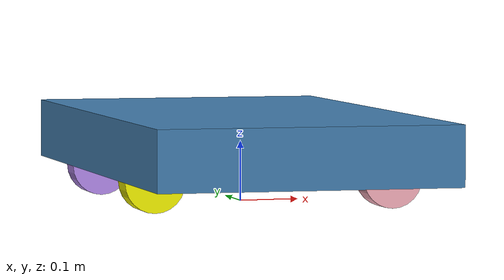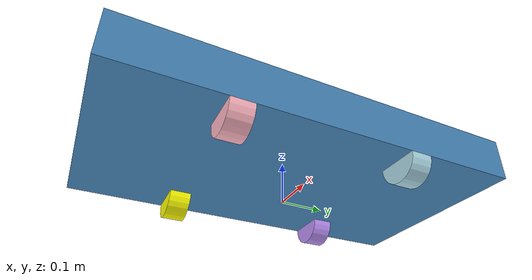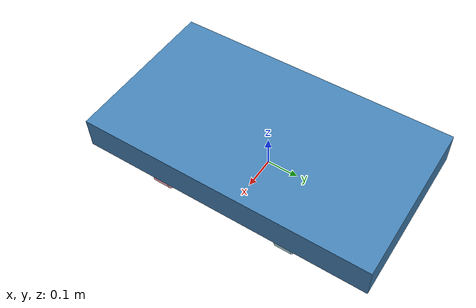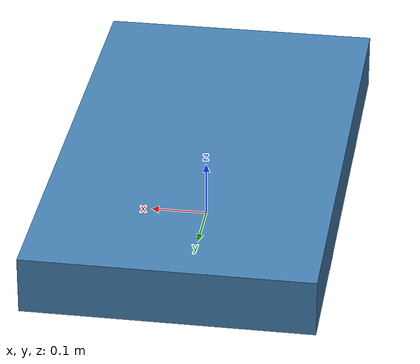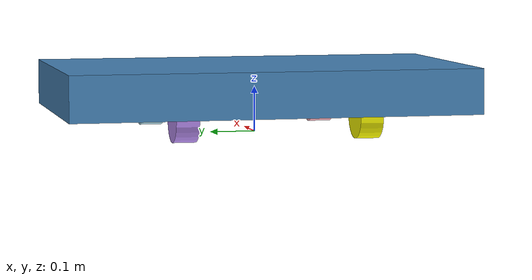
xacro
<?xml version="1.0"?>
<robot xmlns:xacro="http://www.ros.org/wiki/xacro" >
<xacro:include filename="inertial_macros.xacro" />

  <!-- Materials -->
  <material name="Steel Blue">
    <color rgba="0.27 0.51 0.71 1" />
  </material>

  <material name="soft blue">
    <color rgba="0.68 0.85 0.9 1" />
  </material>

  <material name="Pastel Pink">
    <color rgba="1 0.71 0.76 1" />
  </material>

  <material name="Lavender Purple">
    <color rgba="0.73 0.56 0.96 1" />
  </material>

  <material name="yellow">
    <color rgba="1 1 0 1" />
  </material>

  <!-- BASE LINK -->
  <link name="base_link">
  </link>

  <!-- Chassis -->
  <joint name="chassis_joint" type="fixed">
    <parent link="base_link"/>
    <child link="chassis"/>
    <origin xyz="0 0 0" rpy="0 0 0"/>
  </joint>

  <link name="chassis">
    <visual>
      <origin xyz="0 0 0.1" rpy="0 0 0"/>
      <geometry>
        <box size="0.5 0.9 0.1"/>
      </geometry>
      <material name="Steel Blue"/>
    </visual>
    <collision>
      <origin xyz="0 0 0.05" rpy="0 0 0"/>
      <geometry>
        <box size="0.3 0.3 0.1"/>
      </geometry>
    </collision>
    <xacro:inertial_box mass="0.5" x="0.3" y="0.3" z="0.15">
      <origin xyz="0.15 0 0.075" rpy="0 0 0"/>
      </xacro:inertial_box>
  </link>

  <!-- Front Left Wheel -->
  <joint name="front_left_wheel_joint" type="continuous">
    <parent link="chassis"/>
    <child link="front_left_wheel"/>
    <origin xyz="0.2 0.2 0.05" rpy="-${pi/2} 0 0"/>
    <axis xyz="0 0 1"/>
  </joint>

  <link name="front_left_wheel">
    <visual>
      <origin xyz="0 0 0" rpy="0 0 0"/>
      <geometry>
        <cylinder length="0.05" radius="0.05"/>
      </geometry>
      <material name="soft blue"/>
    </visual>
    <collision>
      <origin xyz="0 0 0" rpy="-${pi/2} 0 0"/>
      <geometry>
        <cylinder length="0.05" radius="0.05"/>
      </geometry>
    </collision>
    <xacro:inertial_cylinder mass="0.1" length="0.05" radius="0.05">
      <origin xyz="0 0 0" rpy="0 0 0"/>
  </xacro:inertial_cylinder>
  </link>

  <!-- Front Right Wheel -->
  <joint name="front_right_wheel_joint" type="continuous">
    <parent link="chassis"/>
    <child link="front_right_wheel"/>
    <origin xyz="0.2 -0.2 0.05" rpy="${pi/2} 0 0"/>
    <axis xyz="0 0 -1"/>
  </joint>

  <link name="front_right_wheel">
    <visual>
      <origin xyz="0 0 0" rpy="0 0 0"/>
      <geometry>
        <cylinder length="0.05" radius="0.05"/>
      </geometry>
      <material name="Pastel Pink"/>
    </visual>
    <collision>
      <origin xyz="0 0 0" rpy="${pi/2} 0 0"/>
      <geometry>
        <cylinder length="0.05" radius="0.05"/>
      </geometry>
    </collision>ฃ<xacro:inertial_cylinder mass="0.1" length="0.05" radius="0.05">
      <origin xyz="0 0 0" rpy="0 0 0"/>
  </xacro:inertial_cylinder>
  </link>

  <!-- Rear Left Wheel -->
  <joint name="rear_left_wheel_joint" type="continuous">
    <parent link="chassis"/>
    <child link="rear_left_wheel"/>
    <origin xyz="-0.2 0.2 0.05" rpy="-${pi/2} 0 0"/>
    <axis xyz="0 0 1"/>
  </joint>

  <link name="rear_left_wheel">
    <visual>
      <origin xyz="0 0 0" rpy="0 0 0"/>
      <geometry>
        <cylinder length="0.05" radius="0.05"/>
      </geometry>
      <material name="Lavender Purple"/>
    </visual>
    <collision>
      <origin xyz="0 0 0" rpy="-${pi/2} 0 0"/>
      <geometry>
        <cylinder length="0.05" radius="0.05"/>
      </geometry>
    </collision>
    <xacro:inertial_cylinder mass="0.1" length="0.05" radius="0.05">
      <origin xyz="0 0 0" rpy="0 0 0"/>
  </xacro:inertial_cylinder>
  </link>

  <!-- Rear Right Wheel -->
  <joint name="rear_right_wheel_joint" type="continuous">
    <parent link="chassis"/>
    <child link="rear_right_wheel"/>
    <origin xyz="-0.2 -0.2 0.05" rpy="${pi/2} 0 0"/>
    <axis xyz="0 0 -1"/>
  </joint>

  <link name="rear_right_wheel">
    <visual>
      <origin xyz="0 0 0" rpy="0 0 0"/>
      <geometry>
        <cylinder length="0.05" radius="0.05"/>
      </geometry>
      <material name="yellow"/>
    </visual>
    <collision>
      <origin xyz="0 0 0" rpy="${pi/2} 0 0"/>
      <geometry>
        <cylinder length="0.05" radius="0.05"/>
      </geometry>
    </collision>
    <xacro:inertial_cylinder mass="0.1" length="0.05" radius="0.05">
      <origin xyz="0 0 0" rpy="0 0 0"/>
  </xacro:inertial_cylinder>
  <gazebo reference="caster_wheel">
    <material>Gazebo/Black</material>
    <mu1 value="0.5"/>
    <mu2 value="0.5"/>
  </gazebo>
  </link>

</robot>
